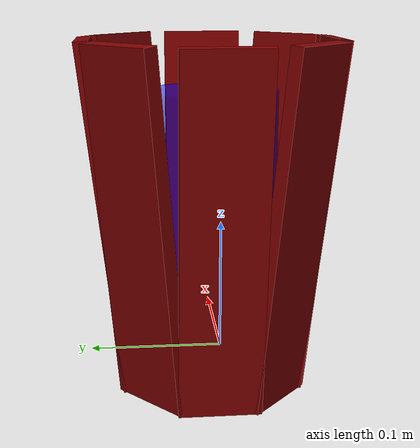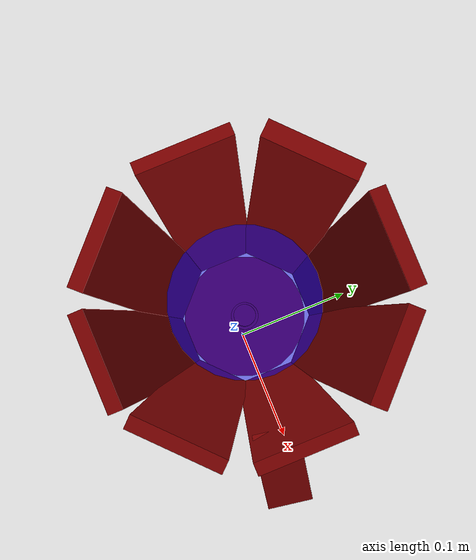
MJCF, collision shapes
<mujoco model="model">
  <option timestep="0.002" gravity="0.0 0.0 -9.81"/>
  <compiler angle="radian"/>
  <asset>
    <mesh file="visuals/blade.obj" name="blade_vis"/>
    <mesh file="visuals/pitcher.obj" name="pitcher_vis"/>
    <mesh file="visuals/pitcher_main.obj" name="pitcher_main_vis"/>
    <texture file="visuals/T_BC001.png" name="pitcher_material" type="2d"/>
    <material name="pitcher_material" rgba="1 1 1 1.0" texture="pitcher_material" shininess="0.4472135901451111" specular="0.3103448502657381"/>
    <texture file="visuals/T_BC001.png" name="blade_material" type="2d"/>
    <material name="blade_material" rgba="1 1 1 1.0" texture="blade_material" shininess="0.4472135901451111" specular="0.3103448502657381"/>
    <material name="pitcher_main_material" rgba="0.0737990140914917 0.0737990140914917 0.0737990140914917 0.699999988079071" shininess="0.5" specular="0.33333333333333337"/>
  </asset>
  <default>
    <default class="visual">
      <geom conaffinity="0" contype="0" group="1" type="mesh"/>
    </default>
    <default class="collision">
      <geom group="0" rgba="0.5 0 0 0.5" density="1000" solref="0.004 1" solimp="0.998 0.998 0.001"/>
    </default>
    <default class="spawn">
      <geom group="0" rgba="1 1 1 0.5" contype="0" conaffinity="0"/>
      <site group="0" rgba="1 1 1 0.5"/>
    </default>
    <default class="region">
      <geom group="1" conaffinity="0" contype="0" rgba="0 1 0 0" mass="0"/>
    </default>
  </default>
  <worldbody>
    <body>
      <body name="object">
        <body name="pitcher">
          <geom mesh="pitcher_vis" type="mesh" solimp="0.998 0.998 0.001" solref="0.001 1" friction="0.95 0.3 0.1" class="visual" material="pitcher_material"/>
          <geom class="collision" type="box" pos="0.10735267 -0.01187913 0.12756005" size="0.008810347877442837 0.01337229460477829 0.05532687529921532" quat="0.9955431222915649 -0.0037091949488967657 -0.0444367341697216 -0.08309933543205261" name="pitcher_handle_0"/>
          <geom class="collision" type="box" pos="0.07499458 -0.00637261 0.04280140" size="0.022820470854640007 0.012766306288540363 0.008864781819283962" quat="0.9837000966072083 -0.013307042419910431 -0.15942050516605377 -0.08211079239845276" name="pitcher_handle_1"/>
          <geom class="collision" type="box" pos="0.08690926 -0.00843251 0.18982184" size="0.021085254848003387 0.013875750824809074 0.009293685667216778" quat="0.9774189591407776 0.016214268282055855 0.19424955546855927 -0.08158648014068604" name="pitcher_handle_2"/>
          <geom type="cylinder" pos="-0.01625181 0.00846700 -0.01524351" size="0.012912442907691002 0.004275952931493521" quat="1.0 0.0 0.0 0.0" class="collision"/>
          <geom class="collision" type="box" pos="0.10627019 -0.01163048 0.06046877" size="0.01726957969367504 0.012766306288540363 0.008864779956638813" quat="0.8413264155387878 -0.0445810966193676 -0.5340885519981384 -0.07022666186094284" name="pitcher_handle_3"/>
          <body name="blade">
            <geom mesh="blade_vis" type="mesh" solimp="0.998 0.998 0.001" solref="0.001 1" friction="0.95 0.3 0.1" class="visual" material="blade_material"/>
            <geom type="cylinder" pos="-0.01625181 0.00846700 -0.00198914" size="0.010120311751961708 0.006583241745829582" quat="1.0 0.0 0.0 0.0" class="collision"/>
          </body>
          <body name="pitcher_main">
            <geom class="region" type="cylinder" size="0.04703454300761223 0.09612751007080078" pos="-0.01505019 0.00881461 0.10539652" rgba="0 0 1 0.5" name="reg_int"/>
            <geom mesh="pitcher_main_vis" type="mesh" solimp="0.998 0.998 0.001" solref="0.001 1" friction="0.95 0.3 0.1" class="visual" material="pitcher_main_material"/>
            <geom type="box" pos="-0.01369678 0.08454736 0.11077496" size="0.029443033039569855 0.005123327020555735 0.1273406445980072" quat="0.9985349774360657 -0.054110053926706314 -0.0 0.0" class="collision"/>
            <geom type="box" pos="-0.01369678 -0.06541527 0.10958939" size="0.029443033039569855 0.0045418147929012775 0.12841808795928955" quat="0.9985349774360657 0.05411006137728691 0.0 0.0" class="collision"/>
            <geom type="box" pos="-0.08937243 0.00839083 0.10954997" size="0.029443033039569855 0.003922209609299898 0.12844577431678772" quat="0.7060708999633789 0.038261592388153076 -0.03826158866286278 -0.7060708403587341" class="collision"/>
            <geom type="box" pos="0.05910120 0.00839084 0.10970971" size="0.029443033039569855 0.003990079741925001 0.12832491099834442" quat="0.7060708999633789 -0.03826158493757248 0.03826158493757248 -0.7060708403587341" class="collision"/>
            <geom type="box" pos="0.03681379 0.06312978 0.10977786" size="0.029443033039569855 0.005239774938672781 0.1283605694770813" quat="0.9271512031555176 -0.050241824239492416 0.020091267302632332 -0.37075966596603394" class="collision"/>
            <geom type="box" pos="-0.06582158 -0.04459222 0.10960838" size="0.029443033039569855 0.004761549644172192 0.12841331958770752" quat="0.9271512031555176 0.05024183169007301 -0.02009126916527748 -0.37075966596603394" class="collision"/>
            <geom type="box" pos="0.03456071 -0.04548651 0.10955570" size="0.029443034902215004 0.004448140971362591 0.12839438021183014" quat="0.9296003580093384 0.05037453770637512 0.019756143912672997 0.36457544565200806" class="collision"/>
            <geom type="box" pos="-0.06607580 0.06412538 0.11124434" size="0.029443034902215004 0.005722026340663433 0.1269514411687851" quat="0.9296003580093384 -0.050374530255794525 -0.019756142050027847 0.36457544565200806" class="collision"/>
            <geom type="cylinder" pos="-0.01625181 0.00846700 -0.01809709" size="0.057328250259160995 0.0008909525349736214" quat="1.0 0.0 0.0 0.0" class="collision"/>
          </body>
        </body>
        <geom class="region" name="reg_bbox" density="0" type="box" pos="0.0 0.0093525 0.1070215" size="0.1203 0.0933 0.13165000000000002"/>
      </body>
      <site rgba="0 1 0 0" size="0.005" pos="-0.013844 0.010204 0.231273" name="anchor_site"/>
    </body>
  </worldbody>
</mujoco>
